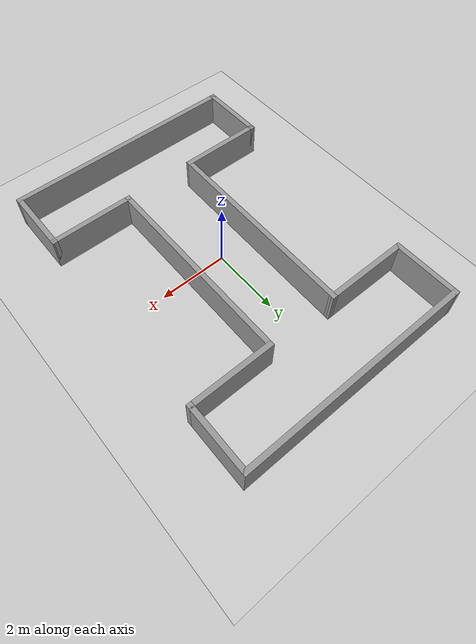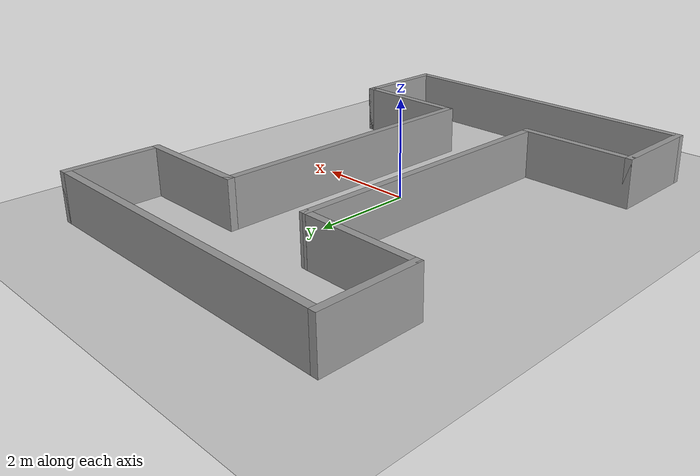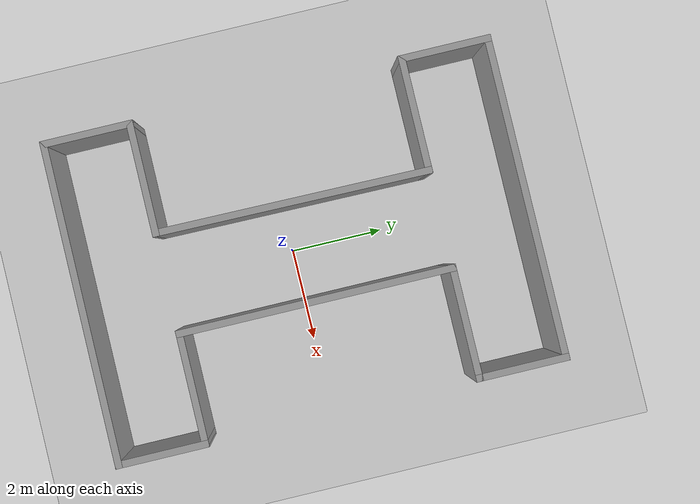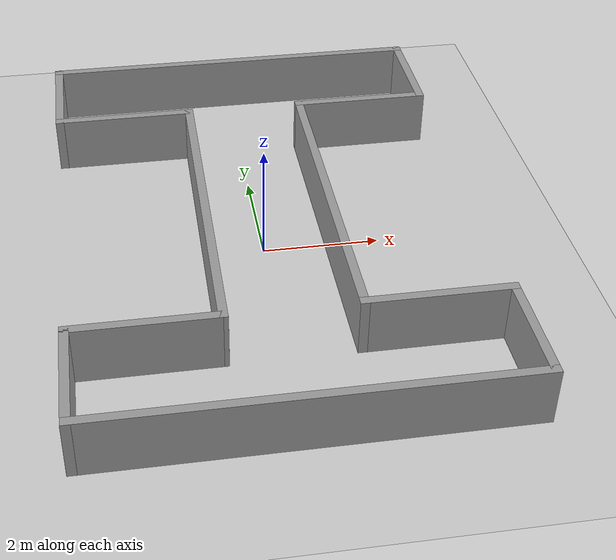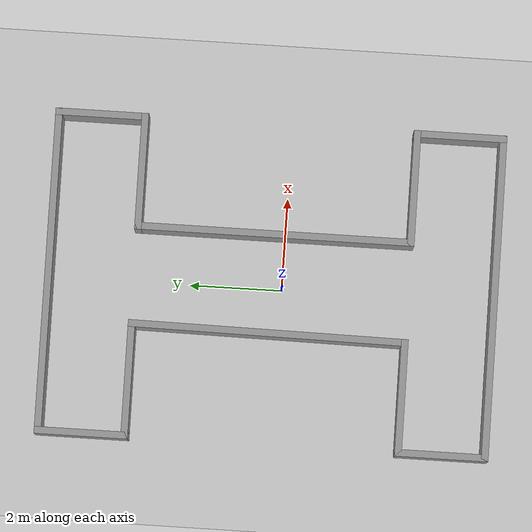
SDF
<sdf version="1.7">
 <world name="default">
  <light name="sun" type="directional">
   <pose>0 0 10 0 -0 0</pose>
   <diffuse>0.8 0.8 0.8 1</diffuse>
   <specular>0.2 0.2 0.2 1</specular>
   <attenuation>
    <range>1000</range>
    <constant>0.9</constant>
    <linear>0.01</linear>
    <quadratic>0.001</quadratic>
   </attenuation>
   <direction>-0.5 0.1 -0.9</direction>
   <spot><inner_angle>0</inner_angle><outer_angle>0</outer_angle><falloff>0</falloff></spot>
  </light>
  <model name="ground_plane">
   <static>1</static>
   <link name="link">
    <collision name="collision">
     <geometry><plane><normal>0 0 1</normal><size>100 100</size></plane></geometry>
     <surface><friction><ode><mu>100</mu><mu2>50</mu2></ode></friction></surface>
    </collision>
    <visual name="visual">
     <cast_shadows>0</cast_shadows>
     <geometry><plane><normal>0 0 1</normal><size>100 100</size></plane></geometry>
     <material>
      <script><uri>file://media/materials/scripts/gazebo.material</uri><name>Gazebo/Grey</name></script>
     </material>
    </visual>
   </link>
  </model>
  <gravity>0 0 -9.8</gravity>
  <magnetic_field>6e-06 2.3e-05 -4.2e-05</magnetic_field>
  <atmosphere type="adiabatic"/>
  <physics type="ode">
   <max_step_size>0.001</max_step_size>
   <real_time_factor>1</real_time_factor>
   <real_time_update_rate>1000</real_time_update_rate>
  </physics>
  <scene><ambient>0.4 0.4 0.4 1</ambient><background>0.7 0.7 0.7 1</background><shadows>1</shadows></scene>
  <spherical_coordinates>
   <surface_model>EARTH_WGS84</surface_model>
   <latitude_deg>0</latitude_deg>
   <longitude_deg>0</longitude_deg>
   <elevation>0</elevation>
   <heading_deg>0</heading_deg>
  </spherical_coordinates>
  <model name="T_Road">
   <pose>0.065765 0.237994 0 0 -0 0</pose>
   <link name="Wall_25">
    <collision name="Wall_25_Collision">
     <geometry><box><size>7 0.15 1</size></box></geometry>
     <pose>0 0 0.5 0 -0 0</pose>
    </collision>
    <visual name="Wall_25_Visual">
     <pose>0 0 0.5 0 -0 0</pose>
     <geometry><box><size>7 0.15 1</size></box></geometry>
     <material>
      <script><uri>file://media/materials/scripts/gazebo.material</uri><name>Gazebo/Grey</name></script>
      <ambient>1 1 1 1</ambient>
     </material>
     <meta><layer>0</layer></meta>
    </visual>
    <pose>0 4.775 0 0 -0 0</pose>
   </link>
   <link name="Wall_43">
    <collision name="Wall_43_Collision">
     <geometry><box><size>2.55499 0.15 1</size></box></geometry>
     <pose>0 0 0.5 0 -0 0</pose>
    </collision>
    <visual name="Wall_43_Visual">
     <pose>0 0 0.5 0 -0 0</pose>
     <geometry><box><size>2.55499 0.15 1</size></box></geometry>
     <material>
      <script><uri>file://media/materials/scripts/gazebo.material</uri><name>Gazebo/Grey</name></script>
      <ambient>1 1 1 1</ambient>
     </material>
     <meta><layer>0</layer></meta>
    </visual>
    <pose>-2.2225 2.925 0 0 -0 3.14159</pose>
   </link>
   <link name="Wall_44">
    <collision name="Wall_44_Collision">
     <geometry><box><size>2.00001 0.15 1</size></box></geometry>
     <pose>0 0 0.5 0 -0 0</pose>
    </collision>
    <visual name="Wall_44_Visual">
     <pose>0 0 0.5 0 -0 0</pose>
     <geometry><box><size>2.00001 0.15 1</size></box></geometry>
     <material>
      <script><uri>file://media/materials/scripts/gazebo.material</uri><name>Gazebo/Grey</name></script>
      <ambient>1 1 1 1</ambient>
     </material>
     <meta><layer>0</layer></meta>
    </visual>
    <pose>-3.425 3.85 0 0 -0 1.5708</pose>
   </link>
   <link name="Wall_48">
    <collision name="Wall_48_Collision">
     <geometry><box><size>2 0.15 1</size></box></geometry>
     <pose>0 0 0.5 0 -0 0</pose>
    </collision>
    <visual name="Wall_48_Visual">
     <pose>0 0 0.5 0 -0 0</pose>
     <geometry><box><size>2 0.15 1</size></box></geometry>
     <material>
      <script><uri>file://media/materials/scripts/gazebo.material</uri><name>Gazebo/Grey</name></script>
      <ambient>1 1 1 1</ambient>
     </material>
     <meta><layer>0</layer></meta>
    </visual>
    <pose>3.425 3.85 0 0 -0 -1.5708</pose>
   </link>
   <link name="Wall_49">
    <collision name="Wall_49_Collision">
     <geometry><box><size>2.5 0.15 1</size></box></geometry>
     <pose>0 0 0.5 0 -0 0</pose>
    </collision>
    <visual name="Wall_49_Visual">
     <pose>0 0 0.5 0 -0 0</pose>
     <geometry><box><size>2.5 0.15 1</size></box></geometry>
     <material>
      <script><uri>file://media/materials/scripts/gazebo.material</uri><name>Gazebo/Grey</name></script>
      <ambient>1 1 1 1</ambient>
     </material>
     <meta><layer>0</layer></meta>
    </visual>
    <pose>2.25 2.925 0 0 -0 3.14159</pose>
   </link>
   <link name="Wall_51">
    <collision name="Wall_51_Collision">
     <geometry><box><size>6 0.15 1</size></box></geometry>
     <pose>0 0 0.5 0 -0 0</pose>
    </collision>
    <visual name="Wall_51_Visual">
     <pose>0 0 0.5 0 -0 0</pose>
     <geometry><box><size>6 0.15 1</size></box></geometry>
     <material>
      <script><uri>file://media/materials/scripts/gazebo.material</uri><name>Gazebo/Grey</name></script>
      <ambient>1 1 1 1</ambient>
     </material>
     <meta><layer>0</layer></meta>
    </visual>
    <pose>1.075 -2e-06 0 0 -0 -1.5708</pose>
   </link>
   <link name="Wall_63">
    <collision name="Wall_63_Collision">
     <geometry><box><size>2.5 0.15 1</size></box></geometry>
     <pose>0 0 0.5 0 -0 0</pose>
    </collision>
    <visual name="Wall_63_Visual">
     <pose>0 0 0.5 0 -0 0</pose>
     <geometry><box><size>2.5 0.15 1</size></box></geometry>
     <material>
      <script><uri>file://media/materials/scripts/gazebo.material</uri><name>Gazebo/Grey</name></script>
      <ambient>1 1 1 1</ambient>
     </material>
     <meta><layer>0</layer></meta>
    </visual>
    <pose>2.25 -2.925 0 0 -0 0</pose>
   </link>
   <link name="Wall_64">
    <collision name="Wall_64_Collision">
     <geometry><box><size>2 0.15 1</size></box></geometry>
     <pose>0 0 0.5 0 -0 0</pose>
    </collision>
    <visual name="Wall_64_Visual">
     <pose>0 0 0.5 0 -0 0</pose>
     <geometry><box><size>2 0.15 1</size></box></geometry>
     <material>
      <script><uri>file://media/materials/scripts/gazebo.material</uri><name>Gazebo/Grey</name></script>
      <ambient>1 1 1 1</ambient>
     </material>
     <meta><layer>0</layer></meta>
    </visual>
    <pose>3.425 -3.85 0 0 -0 -1.5708</pose>
   </link>
   <link name="Wall_65">
    <collision name="Wall_65_Collision">
     <geometry><box><size>7 0.15 1</size></box></geometry>
     <pose>0 0 0.5 0 -0 0</pose>
    </collision>
    <visual name="Wall_65_Visual">
     <pose>0 0 0.5 0 -0 0</pose>
     <geometry><box><size>7 0.15 1</size></box></geometry>
     <material>
      <script><uri>file://media/materials/scripts/gazebo.material</uri><name>Gazebo/Grey</name></script>
      <ambient>1 1 1 1</ambient>
     </material>
     <meta><layer>0</layer></meta>
    </visual>
    <pose>0 -4.775 0 0 -0 3.14159</pose>
   </link>
   <link name="Wall_66">
    <collision name="Wall_66_Collision">
     <geometry><box><size>2 0.15 1</size></box></geometry>
     <pose>0 0 0.5 0 -0 0</pose>
    </collision>
    <visual name="Wall_66_Visual">
     <pose>0 0 0.5 0 -0 0</pose>
     <geometry><box><size>2 0.15 1</size></box></geometry>
     <material>
      <script><uri>file://media/materials/scripts/gazebo.material</uri><name>Gazebo/Grey</name></script>
      <ambient>1 1 1 1</ambient>
     </material>
     <meta><layer>0</layer></meta>
    </visual>
    <pose>-3.425 -3.85 0 0 -0 1.5708</pose>
   </link>
   <link name="Wall_67">
    <collision name="Wall_67_Collision">
     <geometry><box><size>2.5 0.15 1</size></box></geometry>
     <pose>0 0 0.5 0 -0 0</pose>
    </collision>
    <visual name="Wall_67_Visual">
     <pose>0 0 0.5 0 -0 0</pose>
     <geometry><box><size>2.5 0.15 1</size></box></geometry>
     <material>
      <script><uri>file://media/materials/scripts/gazebo.material</uri><name>Gazebo/Grey</name></script>
      <ambient>1 1 1 1</ambient>
     </material>
     <meta><layer>0</layer></meta>
    </visual>
    <pose>-2.25 -2.925 0 0 -0 0</pose>
   </link>
   <link name="Wall_69">
    <collision name="Wall_69_Collision">
     <geometry><box><size>6.00026 0.15 1</size></box></geometry>
     <pose>0 0 0.5 0 -0 0</pose>
    </collision>
    <visual name="Wall_69_Visual">
     <pose>0 0 0.5 0 -0 0</pose>
     <geometry><box><size>6.00026 0.15 1</size></box></geometry>
     <material>
      <script><uri>file://media/materials/scripts/gazebo.material</uri><name>Gazebo/Grey</name></script>
      <ambient>1 1 1 1</ambient>
     </material>
     <meta><layer>0</layer></meta>
    </visual>
    <pose>-1.0475 -2e-06 0 0 -0 -1.5802</pose>
   </link>
   <static>1</static>
  </model>
 </world>
</sdf>
